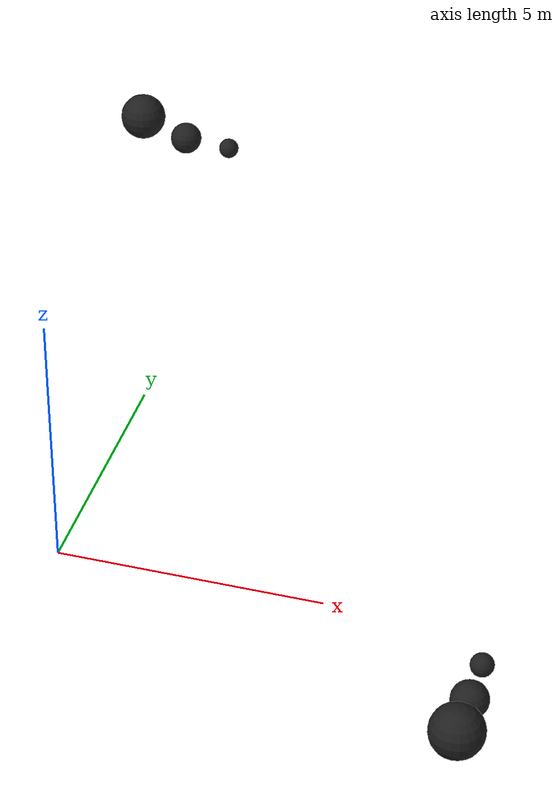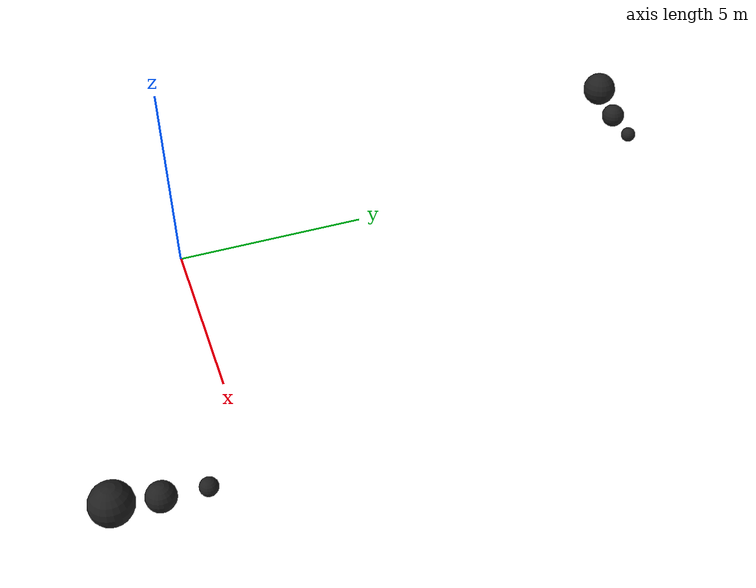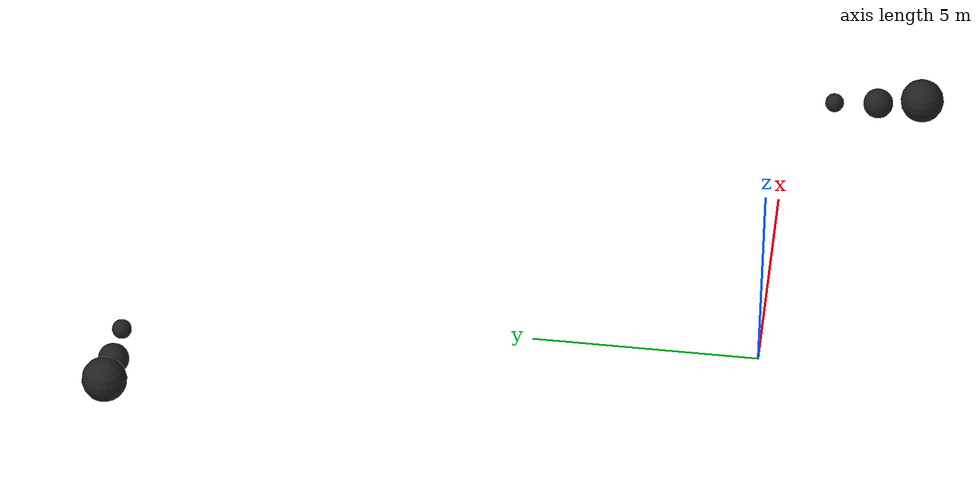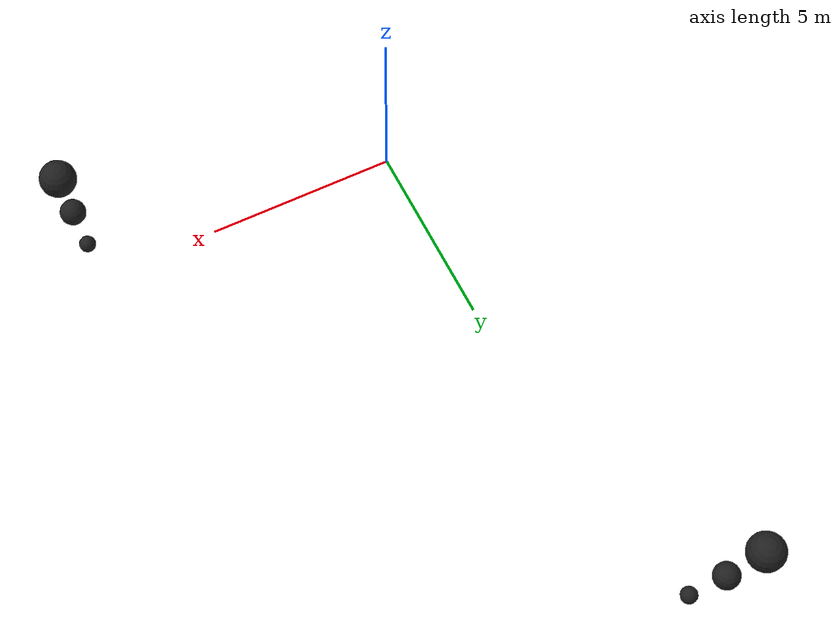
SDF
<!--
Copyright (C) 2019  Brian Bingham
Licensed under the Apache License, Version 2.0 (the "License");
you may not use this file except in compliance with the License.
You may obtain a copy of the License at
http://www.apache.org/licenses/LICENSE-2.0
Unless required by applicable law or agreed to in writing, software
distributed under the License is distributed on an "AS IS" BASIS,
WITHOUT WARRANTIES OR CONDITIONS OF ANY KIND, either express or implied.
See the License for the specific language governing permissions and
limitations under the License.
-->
<sdf version="1.6">
 <world name="ocean_world">
  <scene>
   <sky>
    <time>10</time>
    <sunrise>6</sunrise>
    <sunset>18</sunset>
    <clouds><speed>10</speed><direction>1.57079</direction></clouds>
   </sky>
   <grid>false</grid>
   <origin_visual>false</origin_visual>
  </scene>
  <include><uri>model://sun</uri></include>
  <model name="a_polyform_a3">
   <pose>8.1 -1 0.2 0 0 0</pose>
   <include><uri>model://polyform_a3</uri></include>
  </model>
  <model name="a_polyform_a5">
   <pose>8.1 -2 0.3 0 0 0</pose>
   <include><uri>model://polyform_a5</uri></include>
  </model>
  <model name="a_polyform_a7">
   <pose>8.1 -3 0.5 0 0 0</pose>
   <include><uri>model://polyform_a7</uri></include>
  </model>
  <model name="b_polyform_a3">
   <pose>-1 14 0.2 0 0 0</pose>
   <include><uri>model://polyform_a3</uri></include>
  </model>
  <model name="b_polyform_a5">
   <pose>-2 14 0.3 0 0 0</pose>
   <include><uri>model://polyform_a5</uri></include>
  </model>
  <model name="b_polyform_a7">
   <pose>-3 14 0.7 0 0 0</pose>
   <include><uri>model://polyform_a7</uri></include>
  </model>
 </world>
</sdf>

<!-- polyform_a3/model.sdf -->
<sdf version="1.6">
  <!-- Reference: https://www.polyformus.com/buoys/a-series -->
  <model name="polyform_a3">
    <static>true</static>
    <pose>0 0 0 0 0 0</pose>
    <link name="base_link">
      <inertia>
        <!-- Reference: https://www.sailrite.com/PDF/Polyform-Buoys-Fenders-Accessories.pdf, page 8 -->
        <mass>3.0844</mass>
      </inertia>
      <visual name="visual">
        <geometry>
          <sphere><radius>0.216</radius></sphere>
        </geometry>
        <material>
          <script>
            <uri>file://media/materials/scripts/gazebo.material</uri>
            <name>Gazebo/Black</name>
          </script>
        </material>
      </visual>
      <collision name="collision">
        <geometry>
          <sphere><radius>0.216</radius></sphere>
        </geometry>
      </collision>
    </link>
  </model>
</sdf>

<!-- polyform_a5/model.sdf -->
<sdf version="1.6">
  <!-- Reference: https://www.polyformus.com/buoys/a-series -->
  <model name="polyform_a5">
    <static>true</static>
    <pose>0 0 0 0 0 0</pose>
    <link name="base_link">
      <inertia>
        <!-- Reference: https://www.sailrite.com/PDF/Polyform-Buoys-Fenders-Accessories.pdf, page 8 -->
        <mass>8.98</mass>
      </inertia>
      <visual name="visual">
        <geometry>
          <sphere><radius>0.343</radius></sphere>
        </geometry>
        <material>
          <script>
            <uri>file://media/materials/scripts/gazebo.material</uri>
            <name>Gazebo/Black</name>
          </script>
        </material>
      </visual>
      <collision name="collision">
        <geometry>
          <sphere><radius>0.343</radius></sphere>
        </geometry>
      </collision>
    </link>
  </model>
</sdf>

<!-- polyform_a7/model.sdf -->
<sdf version="1.6">
  <!-- Reference: https://www.polyformus.com/buoys/a-series -->
  <model name="polyform_a7">
    <static>true</static>
    <pose>0 0 0 0 0 0</pose>
    <link name="base_link">
      <inertial>
        <!-- Reference: https://www.sailrite.com/PDF/Polyform-Buoys-Fenders-Accessories.pdf, page 8 -->
        <mass>24.49</mass>
      </inertial>
      <visual name="visual">
        <geometry>
          <sphere><radius>.4955</radius></sphere>
        </geometry>
        <material>
          <script>
            <uri>file://media/materials/scripts/gazebo.material</uri>
            <name>Gazebo/Black</name>
          </script>
        </material>
      </visual>
      <collision name="collision">
        <geometry>
          <sphere><radius>.4955</radius></sphere>
        </geometry>
      </collision>
    </link>
  </model>
</sdf>
